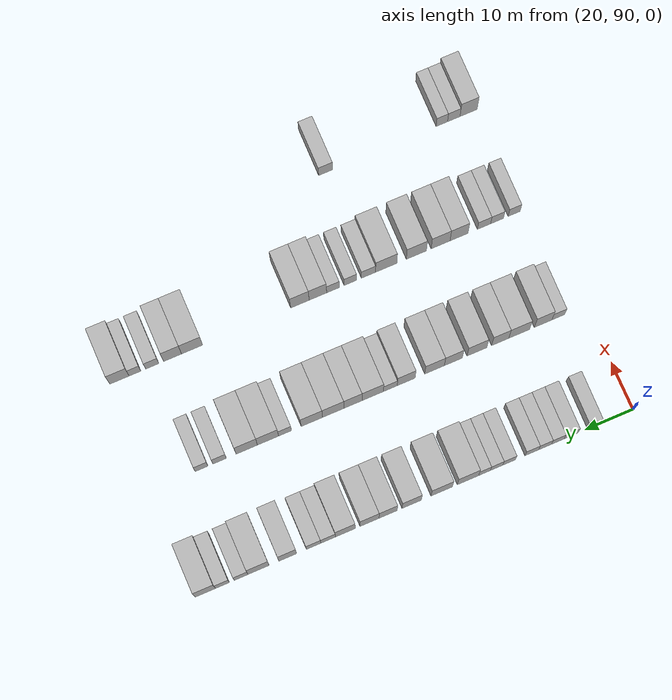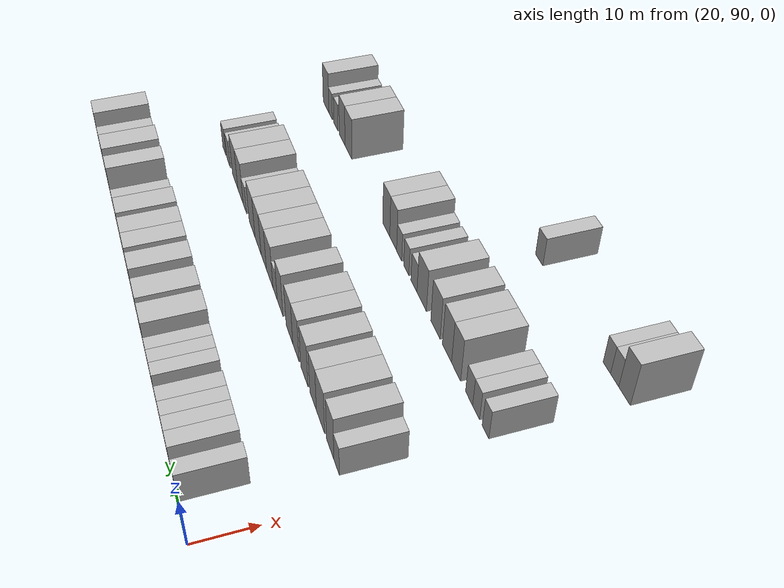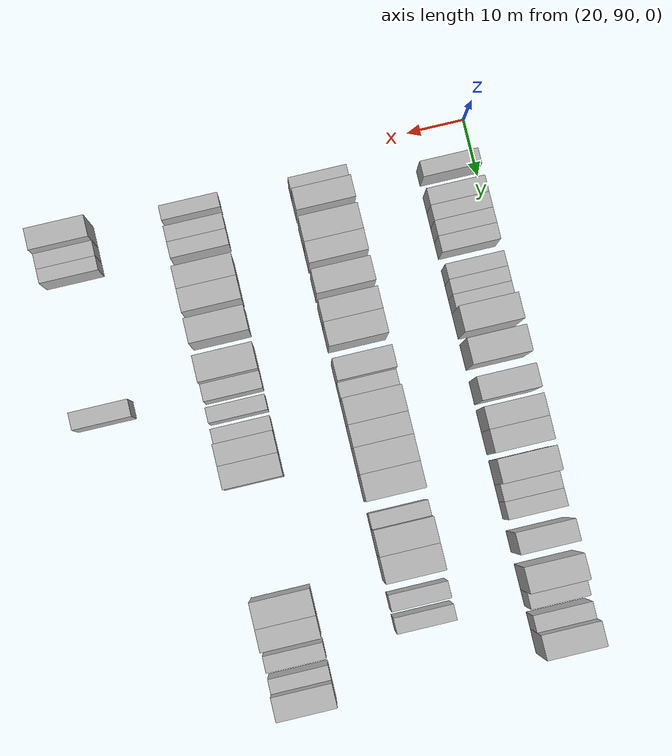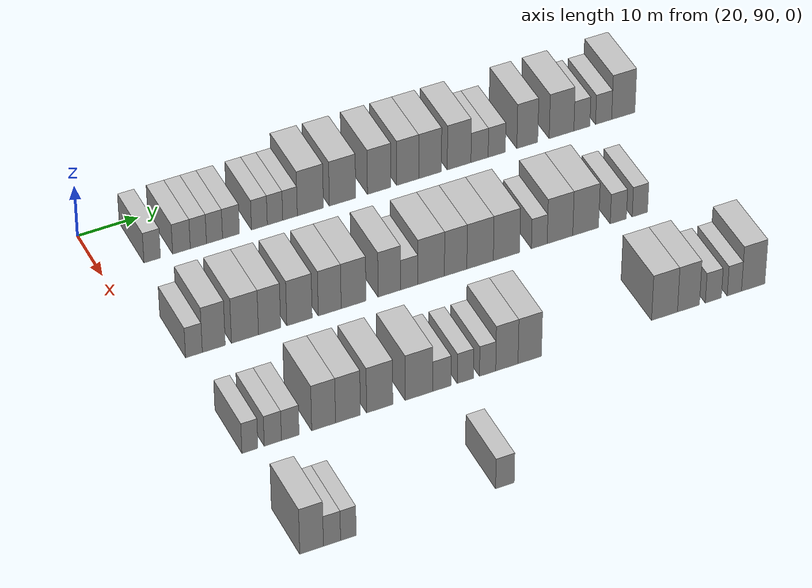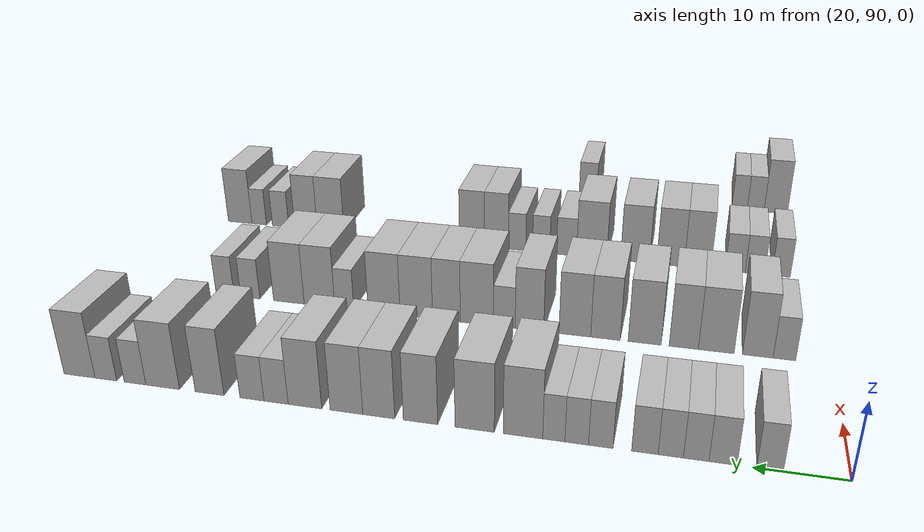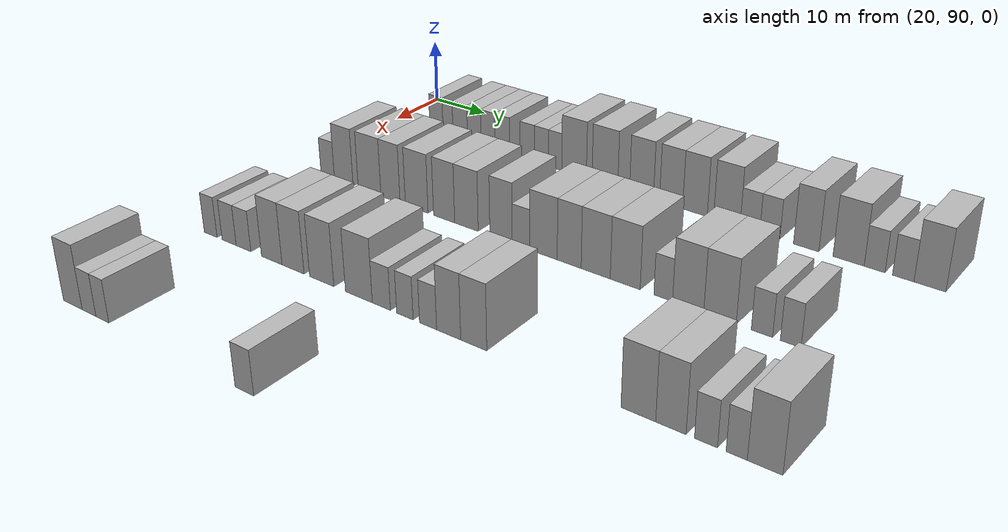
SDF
<sdf version="1.6">
 <world name="default">
  <model name="building_113">
   <static>1</static>
   <pose>25.0000 98.1934 0 0.000000 0.000000 0.000000</pose>
   <link name="link">
    <pose>0 0 3.00 0 0 0</pose>
    <collision name="collision"><geometry><box><size>10.0000 2.7188 6.0000</size></box></geometry></collision>
    <visual name="visual">
     <cast_shadows>0</cast_shadows>
     <geometry><box><size>10.0000 2.7188 6.0000</size></box></geometry>
     <material>
      <script>
       <uri>model://HANNAS_wall/materials/scripts</uri>
       <uri>model://HANNAS_wall/materials/textures</uri>
       <name>vrc/HANNAS_wall</name>
      </script>
     </material>
    </visual>
   </link>
  </model>
  <model name="building_114">
   <static>1</static>
   <pose>25.0000 103.0062 0 0.000000 0.000000 0.000000</pose>
   <link name="link">
    <pose>0 0 3.00 0 0 0</pose>
    <collision name="collision"><geometry><box><size>10.0000 2.9068 6.0000</size></box></geometry></collision>
    <visual name="visual">
     <cast_shadows>0</cast_shadows>
     <geometry><box><size>10.0000 2.9068 6.0000</size></box></geometry>
     <material>
      <script>
       <uri>model://HANNAS_wall/materials/scripts</uri>
       <uri>model://HANNAS_wall/materials/textures</uri>
       <name>vrc/HANNAS_wall</name>
      </script>
     </material>
    </visual>
   </link>
  </model>
  <model name="building_115">
   <static>1</static>
   <pose>25.0000 105.7967 0 0.000000 0.000000 0.000000</pose>
   <link name="link">
    <pose>0 0 3.00 0 0 0</pose>
    <collision name="collision"><geometry><box><size>10.0000 2.6740 6.0000</size></box></geometry></collision>
    <visual name="visual">
     <cast_shadows>0</cast_shadows>
     <geometry><box><size>10.0000 2.6740 6.0000</size></box></geometry>
     <material>
      <script>
       <uri>model://HANNAS_wall/materials/scripts</uri>
       <uri>model://HANNAS_wall/materials/textures</uri>
       <name>vrc/HANNAS_wall</name>
      </script>
     </material>
    </visual>
   </link>
  </model>
  <model name="building_116">
   <static>1</static>
   <pose>25.0000 108.4665 0 0.000000 0.000000 0.000000</pose>
   <link name="link">
    <pose>0 0 3.00 0 0 0</pose>
    <collision name="collision"><geometry><box><size>10.0000 2.6656 6.0000</size></box></geometry></collision>
    <visual name="visual">
     <cast_shadows>0</cast_shadows>
     <geometry><box><size>10.0000 2.6656 6.0000</size></box></geometry>
     <material>
      <script>
       <uri>model://HANNAS_wall/materials/scripts</uri>
       <uri>model://HANNAS_wall/materials/textures</uri>
       <name>vrc/HANNAS_wall</name>
      </script>
     </material>
    </visual>
   </link>
  </model>
  <model name="building_117">
   <static>1</static>
   <pose>25.0000 111.2076 0 0.000000 0.000000 0.000000</pose>
   <link name="link">
    <pose>0 0 3.00 0 0 0</pose>
    <collision name="collision"><geometry><box><size>10.0000 2.8167 6.0000</size></box></geometry></collision>
    <visual name="visual">
     <cast_shadows>0</cast_shadows>
     <geometry><box><size>10.0000 2.8167 6.0000</size></box></geometry>
     <material>
      <script>
       <uri>model://HANNAS_wall/materials/scripts</uri>
       <uri>model://HANNAS_wall/materials/textures</uri>
       <name>vrc/HANNAS_wall</name>
      </script>
     </material>
    </visual>
   </link>
  </model>
  <model name="building_118">
   <static>1</static>
   <pose>25.0000 115.9369 0 0.000000 0.000000 0.000000</pose>
   <link name="link">
    <pose>0 0 3.00 0 0 0</pose>
    <collision name="collision"><geometry><box><size>10.0000 2.6417 6.0000</size></box></geometry></collision>
    <visual name="visual">
     <cast_shadows>0</cast_shadows>
     <geometry><box><size>10.0000 2.6417 6.0000</size></box></geometry>
     <material>
      <script>
       <uri>model://HANNAS_wall/materials/scripts</uri>
       <uri>model://HANNAS_wall/materials/textures</uri>
       <name>vrc/HANNAS_wall</name>
      </script>
     </material>
    </visual>
   </link>
  </model>
  <model name="building_119">
   <static>1</static>
   <pose>25.0000 118.5498 0 0.000000 0.000000 0.000000</pose>
   <link name="link">
    <pose>0 0 3.00 0 0 0</pose>
    <collision name="collision"><geometry><box><size>10.0000 2.5841 6.0000</size></box></geometry></collision>
    <visual name="visual">
     <cast_shadows>0</cast_shadows>
     <geometry><box><size>10.0000 2.5841 6.0000</size></box></geometry>
     <material>
      <script>
       <uri>model://HANNAS_wall/materials/scripts</uri>
       <uri>model://HANNAS_wall/materials/textures</uri>
       <name>vrc/HANNAS_wall</name>
      </script>
     </material>
    </visual>
   </link>
  </model>
  <model name="building_120">
   <static>1</static>
   <pose>25.0000 121.0644 0 0.000000 0.000000 0.000000</pose>
   <link name="link">
    <pose>0 0 3.00 0 0 0</pose>
    <collision name="collision"><geometry><box><size>10.0000 2.4453 6.0000</size></box></geometry></collision>
    <visual name="visual">
     <cast_shadows>0</cast_shadows>
     <geometry><box><size>10.0000 2.4453 6.0000</size></box></geometry>
     <material>
      <script>
       <uri>model://HANNAS_wall/materials/scripts</uri>
       <uri>model://HANNAS_wall/materials/textures</uri>
       <name>vrc/HANNAS_wall</name>
      </script>
     </material>
    </visual>
   </link>
  </model>
  <model name="building_121">
   <static>1</static>
   <pose>25.0000 124.4871 0 0.000000 0.000000 0.000000</pose>
   <link name="link">
    <pose>0 0 4.50 0 0 0</pose>
    <collision name="collision"><geometry><box><size>10.0000 4.4001 9.0000</size></box></geometry></collision>
    <visual name="visual">
     <cast_shadows>0</cast_shadows>
     <geometry><box><size>10.0000 4.4001 9.0000</size></box></geometry>
     <material>
      <script>
       <uri>model://HANNAS_wall/materials/scripts</uri>
       <uri>model://HANNAS_wall/materials/textures</uri>
       <name>vrc/HANNAS_wall</name>
      </script>
     </material>
    </visual>
   </link>
  </model>
  <model name="building_122">
   <static>1</static>
   <pose>25.0000 129.9169 0 0.000000 0.000000 0.000000</pose>
   <link name="link">
    <pose>0 0 4.50 0 0 0</pose>
    <collision name="collision"><geometry><box><size>10.0000 4.4595 9.0000</size></box></geometry></collision>
    <visual name="visual">
     <cast_shadows>0</cast_shadows>
     <geometry><box><size>10.0000 4.4595 9.0000</size></box></geometry>
     <material>
      <script>
       <uri>model://HANNAS_wall/materials/scripts</uri>
       <uri>model://HANNAS_wall/materials/textures</uri>
       <name>vrc/HANNAS_wall</name>
      </script>
     </material>
    </visual>
   </link>
  </model>
  <model name="building_123">
   <static>1</static>
   <pose>25.0000 136.1420 0 0.000000 0.000000 0.000000</pose>
   <link name="link">
    <pose>0 0 4.50 0 0 0</pose>
    <collision name="collision"><geometry><box><size>10.0000 3.9908 9.0000</size></box></geometry></collision>
    <visual name="visual">
     <cast_shadows>0</cast_shadows>
     <geometry><box><size>10.0000 3.9908 9.0000</size></box></geometry>
     <material>
      <script>
       <uri>model://HANNAS_wall/materials/scripts</uri>
       <uri>model://HANNAS_wall/materials/textures</uri>
       <name>vrc/HANNAS_wall</name>
      </script>
     </material>
    </visual>
   </link>
  </model>
  <model name="building_124">
   <static>1</static>
   <pose>25.0000 141.0185 0 0.000000 0.000000 0.000000</pose>
   <link name="link">
    <pose>0 0 4.50 0 0 0</pose>
    <collision name="collision"><geometry><box><size>10.0000 3.7621 9.0000</size></box></geometry></collision>
    <visual name="visual">
     <cast_shadows>0</cast_shadows>
     <geometry><box><size>10.0000 3.7621 9.0000</size></box></geometry>
     <material>
      <script>
       <uri>model://HANNAS_wall/materials/scripts</uri>
       <uri>model://HANNAS_wall/materials/textures</uri>
       <name>vrc/HANNAS_wall</name>
      </script>
     </material>
    </visual>
   </link>
  </model>
  <model name="building_125">
   <static>1</static>
   <pose>25.0000 144.8563 0 0.000000 0.000000 0.000000</pose>
   <link name="link">
    <pose>0 0 4.50 0 0 0</pose>
    <collision name="collision"><geometry><box><size>10.0000 3.9134 9.0000</size></box></geometry></collision>
    <visual name="visual">
     <cast_shadows>0</cast_shadows>
     <geometry><box><size>10.0000 3.9134 9.0000</size></box></geometry>
     <material>
      <script>
       <uri>model://HANNAS_wall/materials/scripts</uri>
       <uri>model://HANNAS_wall/materials/textures</uri>
       <name>vrc/HANNAS_wall</name>
      </script>
     </material>
    </visual>
   </link>
  </model>
  <model name="building_126">
   <static>1</static>
   <pose>25.0000 149.8537 0 0.000000 0.000000 0.000000</pose>
   <link name="link">
    <pose>0 0 4.50 0 0 0</pose>
    <collision name="collision"><geometry><box><size>10.0000 4.0814 9.0000</size></box></geometry></collision>
    <visual name="visual">
     <cast_shadows>0</cast_shadows>
     <geometry><box><size>10.0000 4.0814 9.0000</size></box></geometry>
     <material>
      <script>
       <uri>model://HANNAS_wall/materials/scripts</uri>
       <uri>model://HANNAS_wall/materials/textures</uri>
       <name>vrc/HANNAS_wall</name>
      </script>
     </material>
    </visual>
   </link>
  </model>
  <model name="building_127">
   <static>1</static>
   <pose>25.0000 153.3844 0 0.000000 0.000000 0.000000</pose>
   <link name="link">
    <pose>0 0 3.00 0 0 0</pose>
    <collision name="collision"><geometry><box><size>10.0000 2.9800 6.0000</size></box></geometry></collision>
    <visual name="visual">
     <cast_shadows>0</cast_shadows>
     <geometry><box><size>10.0000 2.9800 6.0000</size></box></geometry>
     <material>
      <script>
       <uri>model://HANNAS_wall/materials/scripts</uri>
       <uri>model://HANNAS_wall/materials/textures</uri>
       <name>vrc/HANNAS_wall</name>
      </script>
     </material>
    </visual>
   </link>
  </model>
  <model name="building_128">
   <static>1</static>
   <pose>25.0000 156.3666 0 0.000000 0.000000 0.000000</pose>
   <link name="link">
    <pose>0 0 3.00 0 0 0</pose>
    <collision name="collision"><geometry><box><size>10.0000 2.9844 6.0000</size></box></geometry></collision>
    <visual name="visual">
     <cast_shadows>0</cast_shadows>
     <geometry><box><size>10.0000 2.9844 6.0000</size></box></geometry>
     <material>
      <script>
       <uri>model://HANNAS_wall/materials/scripts</uri>
       <uri>model://HANNAS_wall/materials/textures</uri>
       <name>vrc/HANNAS_wall</name>
      </script>
     </material>
    </visual>
   </link>
  </model>
  <model name="building_129">
   <static>1</static>
   <pose>25.0000 161.6820 0 0.000000 0.000000 0.000000</pose>
   <link name="link">
    <pose>0 0 4.50 0 0 0</pose>
    <collision name="collision"><geometry><box><size>10.0000 3.6465 9.0000</size></box></geometry></collision>
    <visual name="visual">
     <cast_shadows>0</cast_shadows>
     <geometry><box><size>10.0000 3.6465 9.0000</size></box></geometry>
     <material>
      <script>
       <uri>model://HANNAS_wall/materials/scripts</uri>
       <uri>model://HANNAS_wall/materials/textures</uri>
       <name>vrc/HANNAS_wall</name>
      </script>
     </material>
    </visual>
   </link>
  </model>
  <model name="building_130">
   <static>1</static>
   <pose>25.0000 167.6721 0 0.000000 0.000000 0.000000</pose>
   <link name="link">
    <pose>0 0 4.50 0 0 0</pose>
    <collision name="collision"><geometry><box><size>10.0000 4.3336 9.0000</size></box></geometry></collision>
    <visual name="visual">
     <cast_shadows>0</cast_shadows>
     <geometry><box><size>10.0000 4.3336 9.0000</size></box></geometry>
     <material>
      <script>
       <uri>model://HANNAS_wall/materials/scripts</uri>
       <uri>model://HANNAS_wall/materials/textures</uri>
       <name>vrc/HANNAS_wall</name>
      </script>
     </material>
    </visual>
   </link>
  </model>
  <model name="building_131">
   <static>1</static>
   <pose>25.0000 171.2485 0 0.000000 0.000000 0.000000</pose>
   <link name="link">
    <pose>0 0 3.00 0 0 0</pose>
    <collision name="collision"><geometry><box><size>10.0000 2.8191 6.0000</size></box></geometry></collision>
    <visual name="visual">
     <cast_shadows>0</cast_shadows>
     <geometry><box><size>10.0000 2.8191 6.0000</size></box></geometry>
     <material>
      <script>
       <uri>model://HANNAS_wall/materials/scripts</uri>
       <uri>model://HANNAS_wall/materials/textures</uri>
       <name>vrc/HANNAS_wall</name>
      </script>
     </material>
    </visual>
   </link>
  </model>
  <model name="building_132">
   <static>1</static>
   <pose>25.0000 175.0804 0 0.000000 0.000000 0.000000</pose>
   <link name="link">
    <pose>0 0 3.00 0 0 0</pose>
    <collision name="collision"><geometry><box><size>10.0000 2.8447 6.0000</size></box></geometry></collision>
    <visual name="visual">
     <cast_shadows>0</cast_shadows>
     <geometry><box><size>10.0000 2.8447 6.0000</size></box></geometry>
     <material>
      <script>
       <uri>model://HANNAS_wall/materials/scripts</uri>
       <uri>model://HANNAS_wall/materials/textures</uri>
       <name>vrc/HANNAS_wall</name>
      </script>
     </material>
    </visual>
   </link>
  </model>
  <model name="building_133">
   <static>1</static>
   <pose>25.0000 178.5672 0 0.000000 0.000000 0.000000</pose>
   <link name="link">
    <pose>0 0 4.50 0 0 0</pose>
    <collision name="collision"><geometry><box><size>10.0000 4.1291 9.0000</size></box></geometry></collision>
    <visual name="visual">
     <cast_shadows>0</cast_shadows>
     <geometry><box><size>10.0000 4.1291 9.0000</size></box></geometry>
     <material>
      <script>
       <uri>model://HANNAS_wall/materials/scripts</uri>
       <uri>model://HANNAS_wall/materials/textures</uri>
       <name>vrc/HANNAS_wall</name>
      </script>
     </material>
    </visual>
   </link>
  </model>
  <model name="building_296">
   <static>1</static>
   <pose>47.0000 95.8360 0 0.000000 0.000000 0.000000</pose>
   <link name="link">
    <pose>0 0 3.00 0 0 0</pose>
    <collision name="collision"><geometry><box><size>10.0000 2.6972 6.0000</size></box></geometry></collision>
    <visual name="visual">
     <cast_shadows>0</cast_shadows>
     <geometry><box><size>10.0000 2.6972 6.0000</size></box></geometry>
     <material>
      <script>
       <uri>model://HANNAS_wall/materials/scripts</uri>
       <uri>model://HANNAS_wall/materials/textures</uri>
       <name>vrc/HANNAS_wall</name>
      </script>
     </material>
    </visual>
   </link>
  </model>
  <model name="building_297">
   <static>1</static>
   <pose>47.0000 99.0369 0 0.000000 0.000000 0.000000</pose>
   <link name="link">
    <pose>0 0 4.50 0 0 0</pose>
    <collision name="collision"><geometry><box><size>10.0000 3.7046 9.0000</size></box></geometry></collision>
    <visual name="visual">
     <cast_shadows>0</cast_shadows>
     <geometry><box><size>10.0000 3.7046 9.0000</size></box></geometry>
     <material>
      <script>
       <uri>model://HANNAS_wall/materials/scripts</uri>
       <uri>model://HANNAS_wall/materials/textures</uri>
       <name>vrc/HANNAS_wall</name>
      </script>
     </material>
    </visual>
   </link>
  </model>
  <model name="building_298">
   <static>1</static>
   <pose>47.0000 104.0812 0 0.000000 0.000000 0.000000</pose>
   <link name="link">
    <pose>0 0 4.50 0 0 0</pose>
    <collision name="collision"><geometry><box><size>10.0000 4.3840 9.0000</size></box></geometry></collision>
    <visual name="visual">
     <cast_shadows>0</cast_shadows>
     <geometry><box><size>10.0000 4.3840 9.0000</size></box></geometry>
     <material>
      <script>
       <uri>model://HANNAS_wall/materials/scripts</uri>
       <uri>model://HANNAS_wall/materials/textures</uri>
       <name>vrc/HANNAS_wall</name>
      </script>
     </material>
    </visual>
   </link>
  </model>
  <model name="building_299">
   <static>1</static>
   <pose>47.0000 108.0763 0 0.000000 0.000000 0.000000</pose>
   <link name="link">
    <pose>0 0 4.50 0 0 0</pose>
    <collision name="collision"><geometry><box><size>10.0000 3.6062 9.0000</size></box></geometry></collision>
    <visual name="visual">
     <cast_shadows>0</cast_shadows>
     <geometry><box><size>10.0000 3.6062 9.0000</size></box></geometry>
     <material>
      <script>
       <uri>model://HANNAS_wall/materials/scripts</uri>
       <uri>model://HANNAS_wall/materials/textures</uri>
       <name>vrc/HANNAS_wall</name>
      </script>
     </material>
    </visual>
   </link>
  </model>
  <model name="building_300">
   <static>1</static>
   <pose>47.0000 112.9528 0 0.000000 0.000000 0.000000</pose>
   <link name="link">
    <pose>0 0 4.50 0 0 0</pose>
    <collision name="collision"><geometry><box><size>10.0000 4.1467 9.0000</size></box></geometry></collision>
    <visual name="visual">
     <cast_shadows>0</cast_shadows>
     <geometry><box><size>10.0000 4.1467 9.0000</size></box></geometry>
     <material>
      <script>
       <uri>model://HANNAS_wall/materials/scripts</uri>
       <uri>model://HANNAS_wall/materials/textures</uri>
       <name>vrc/HANNAS_wall</name>
      </script>
     </material>
    </visual>
   </link>
  </model>
  <model name="building_301">
   <static>1</static>
   <pose>47.0000 117.9065 0 0.000000 0.000000 0.000000</pose>
   <link name="link">
    <pose>0 0 4.50 0 0 0</pose>
    <collision name="collision"><geometry><box><size>10.0000 3.7607 9.0000</size></box></geometry></collision>
    <visual name="visual">
     <cast_shadows>0</cast_shadows>
     <geometry><box><size>10.0000 3.7607 9.0000</size></box></geometry>
     <material>
      <script>
       <uri>model://HANNAS_wall/materials/scripts</uri>
       <uri>model://HANNAS_wall/materials/textures</uri>
       <name>vrc/HANNAS_wall</name>
      </script>
     </material>
    </visual>
   </link>
  </model>
  <model name="building_302">
   <static>1</static>
   <pose>47.0000 121.8339 0 0.000000 0.000000 0.000000</pose>
   <link name="link">
    <pose>0 0 4.50 0 0 0</pose>
    <collision name="collision"><geometry><box><size>10.0000 4.0941 9.0000</size></box></geometry></collision>
    <visual name="visual">
     <cast_shadows>0</cast_shadows>
     <geometry><box><size>10.0000 4.0941 9.0000</size></box></geometry>
     <material>
      <script>
       <uri>model://HANNAS_wall/materials/scripts</uri>
       <uri>model://HANNAS_wall/materials/textures</uri>
       <name>vrc/HANNAS_wall</name>
      </script>
     </material>
    </visual>
   </link>
  </model>
  <model name="building_303">
   <static>1</static>
   <pose>47.0000 127.7481 0 0.000000 0.000000 0.000000</pose>
   <link name="link">
    <pose>0 0 4.50 0 0 0</pose>
    <collision name="collision"><geometry><box><size>10.0000 3.7342 9.0000</size></box></geometry></collision>
    <visual name="visual">
     <cast_shadows>0</cast_shadows>
     <geometry><box><size>10.0000 3.7342 9.0000</size></box></geometry>
     <material>
      <script>
       <uri>model://HANNAS_wall/materials/scripts</uri>
       <uri>model://HANNAS_wall/materials/textures</uri>
       <name>vrc/HANNAS_wall</name>
      </script>
     </material>
    </visual>
   </link>
  </model>
  <model name="building_304">
   <static>1</static>
   <pose>47.0000 131.0522 0 0.000000 0.000000 0.000000</pose>
   <link name="link">
    <pose>0 0 3.00 0 0 0</pose>
    <collision name="collision"><geometry><box><size>10.0000 2.8739 6.0000</size></box></geometry></collision>
    <visual name="visual">
     <cast_shadows>0</cast_shadows>
     <geometry><box><size>10.0000 2.8739 6.0000</size></box></geometry>
     <material>
      <script>
       <uri>model://HANNAS_wall/materials/scripts</uri>
       <uri>model://HANNAS_wall/materials/textures</uri>
       <name>vrc/HANNAS_wall</name>
      </script>
     </material>
    </visual>
   </link>
  </model>
  <model name="building_305">
   <static>1</static>
   <pose>47.0000 134.7107 0 0.000000 0.000000 0.000000</pose>
   <link name="link">
    <pose>0 0 4.50 0 0 0</pose>
    <collision name="collision"><geometry><box><size>10.0000 4.4432 9.0000</size></box></geometry></collision>
    <visual name="visual">
     <cast_shadows>0</cast_shadows>
     <geometry><box><size>10.0000 4.4432 9.0000</size></box></geometry>
     <material>
      <script>
       <uri>model://HANNAS_wall/materials/scripts</uri>
       <uri>model://HANNAS_wall/materials/textures</uri>
       <name>vrc/HANNAS_wall</name>
      </script>
     </material>
    </visual>
   </link>
  </model>
  <model name="building_306">
   <static>1</static>
   <pose>47.0000 138.8138 0 0.000000 0.000000 0.000000</pose>
   <link name="link">
    <pose>0 0 4.50 0 0 0</pose>
    <collision name="collision"><geometry><box><size>10.0000 3.7629 9.0000</size></box></geometry></collision>
    <visual name="visual">
     <cast_shadows>0</cast_shadows>
     <geometry><box><size>10.0000 3.7629 9.0000</size></box></geometry>
     <material>
      <script>
       <uri>model://HANNAS_wall/materials/scripts</uri>
       <uri>model://HANNAS_wall/materials/textures</uri>
       <name>vrc/HANNAS_wall</name>
      </script>
     </material>
    </visual>
   </link>
  </model>
  <model name="building_307">
   <static>1</static>
   <pose>47.0000 142.9239 0 0.000000 0.000000 0.000000</pose>
   <link name="link">
    <pose>0 0 4.50 0 0 0</pose>
    <collision name="collision"><geometry><box><size>10.0000 4.4574 9.0000</size></box></geometry></collision>
    <visual name="visual">
     <cast_shadows>0</cast_shadows>
     <geometry><box><size>10.0000 4.4574 9.0000</size></box></geometry>
     <material>
      <script>
       <uri>model://HANNAS_wall/materials/scripts</uri>
       <uri>model://HANNAS_wall/materials/textures</uri>
       <name>vrc/HANNAS_wall</name>
      </script>
     </material>
    </visual>
   </link>
  </model>
  <model name="building_308">
   <static>1</static>
   <pose>47.0000 147.3771 0 0.000000 0.000000 0.000000</pose>
   <link name="link">
    <pose>0 0 4.50 0 0 0</pose>
    <collision name="collision"><geometry><box><size>10.0000 4.4489 9.0000</size></box></geometry></collision>
    <visual name="visual">
     <cast_shadows>0</cast_shadows>
     <geometry><box><size>10.0000 4.4489 9.0000</size></box></geometry>
     <material>
      <script>
       <uri>model://HANNAS_wall/materials/scripts</uri>
       <uri>model://HANNAS_wall/materials/textures</uri>
       <name>vrc/HANNAS_wall</name>
      </script>
     </material>
    </visual>
   </link>
  </model>
  <model name="building_309">
   <static>1</static>
   <pose>47.0000 152.9377 0 0.000000 0.000000 0.000000</pose>
   <link name="link">
    <pose>0 0 3.00 0 0 0</pose>
    <collision name="collision"><geometry><box><size>10.0000 2.6724 6.0000</size></box></geometry></collision>
    <visual name="visual">
     <cast_shadows>0</cast_shadows>
     <geometry><box><size>10.0000 2.6724 6.0000</size></box></geometry>
     <material>
      <script>
       <uri>model://HANNAS_wall/materials/scripts</uri>
       <uri>model://HANNAS_wall/materials/textures</uri>
       <name>vrc/HANNAS_wall</name>
      </script>
     </material>
    </visual>
   </link>
  </model>
  <model name="building_310">
   <static>1</static>
   <pose>47.0000 156.4599 0 0.000000 0.000000 0.000000</pose>
   <link name="link">
    <pose>0 0 4.50 0 0 0</pose>
    <collision name="collision"><geometry><box><size>10.0000 4.3719 9.0000</size></box></geometry></collision>
    <visual name="visual">
     <cast_shadows>0</cast_shadows>
     <geometry><box><size>10.0000 4.3719 9.0000</size></box></geometry>
     <material>
      <script>
       <uri>model://HANNAS_wall/materials/scripts</uri>
       <uri>model://HANNAS_wall/materials/textures</uri>
       <name>vrc/HANNAS_wall</name>
      </script>
     </material>
    </visual>
   </link>
  </model>
  <model name="building_311">
   <static>1</static>
   <pose>47.0000 160.8586 0 0.000000 0.000000 0.000000</pose>
   <link name="link">
    <pose>0 0 4.50 0 0 0</pose>
    <collision name="collision"><geometry><box><size>10.0000 4.4255 9.0000</size></box></geometry></collision>
    <visual name="visual">
     <cast_shadows>0</cast_shadows>
     <geometry><box><size>10.0000 4.4255 9.0000</size></box></geometry>
     <material>
      <script>
       <uri>model://HANNAS_wall/materials/scripts</uri>
       <uri>model://HANNAS_wall/materials/textures</uri>
       <name>vrc/HANNAS_wall</name>
      </script>
     </material>
    </visual>
   </link>
  </model>
  <model name="building_312">
   <static>1</static>
   <pose>47.0000 166.4663 0 0.000000 0.000000 0.000000</pose>
   <link name="link">
    <pose>0 0 3.00 0 0 0</pose>
    <collision name="collision"><geometry><box><size>10.0000 2.7898 6.0000</size></box></geometry></collision>
    <visual name="visual">
     <cast_shadows>0</cast_shadows>
     <geometry><box><size>10.0000 2.7898 6.0000</size></box></geometry>
     <material>
      <script>
       <uri>model://HANNAS_wall/materials/scripts</uri>
       <uri>model://HANNAS_wall/materials/textures</uri>
       <name>vrc/HANNAS_wall</name>
      </script>
     </material>
    </visual>
   </link>
  </model>
  <model name="building_313">
   <static>1</static>
   <pose>47.0000 170.1866 0 0.000000 0.000000 0.000000</pose>
   <link name="link">
    <pose>0 0 3.00 0 0 0</pose>
    <collision name="collision"><geometry><box><size>10.0000 2.6507 6.0000</size></box></geometry></collision>
    <visual name="visual">
     <cast_shadows>0</cast_shadows>
     <geometry><box><size>10.0000 2.6507 6.0000</size></box></geometry>
     <material>
      <script>
       <uri>model://HANNAS_wall/materials/scripts</uri>
       <uri>model://HANNAS_wall/materials/textures</uri>
       <name>vrc/HANNAS_wall</name>
      </script>
     </material>
    </visual>
   </link>
  </model>
  <model name="building_481">
   <static>1</static>
   <pose>69.0000 95.3985 0 0.000000 0.000000 0.000000</pose>
   <link name="link">
    <pose>0 0 3.00 0 0 0</pose>
    <collision name="collision"><geometry><box><size>10.0000 2.5246 6.0000</size></box></geometry></collision>
    <visual name="visual">
     <cast_shadows>0</cast_shadows>
     <geometry><box><size>10.0000 2.5246 6.0000</size></box></geometry>
     <material>
      <script>
       <uri>model://HANNAS_wall/materials/scripts</uri>
       <uri>model://HANNAS_wall/materials/textures</uri>
       <name>vrc/HANNAS_wall</name>
      </script>
     </material>
    </visual>
   </link>
  </model>
  <model name="building_482">
   <static>1</static>
   <pose>69.0000 99.0196 0 0.000000 0.000000 0.000000</pose>
   <link name="link">
    <pose>0 0 3.00 0 0 0</pose>
    <collision name="collision"><geometry><box><size>10.0000 2.7177 6.0000</size></box></geometry></collision>
    <visual name="visual">
     <cast_shadows>0</cast_shadows>
     <geometry><box><size>10.0000 2.7177 6.0000</size></box></geometry>
     <material>
      <script>
       <uri>model://HANNAS_wall/materials/scripts</uri>
       <uri>model://HANNAS_wall/materials/textures</uri>
       <name>vrc/HANNAS_wall</name>
      </script>
     </material>
    </visual>
   </link>
  </model>
  <model name="building_483">
   <static>1</static>
   <pose>69.0000 101.7805 0 0.000000 0.000000 0.000000</pose>
   <link name="link">
    <pose>0 0 3.00 0 0 0</pose>
    <collision name="collision"><geometry><box><size>10.0000 2.8041 6.0000</size></box></geometry></collision>
    <visual name="visual">
     <cast_shadows>0</cast_shadows>
     <geometry><box><size>10.0000 2.8041 6.0000</size></box></geometry>
     <material>
      <script>
       <uri>model://HANNAS_wall/materials/scripts</uri>
       <uri>model://HANNAS_wall/materials/textures</uri>
       <name>vrc/HANNAS_wall</name>
      </script>
     </material>
    </visual>
   </link>
  </model>
  <model name="building_484">
   <static>1</static>
   <pose>69.0000 107.0834 0 0.000000 0.000000 0.000000</pose>
   <link name="link">
    <pose>0 0 4.50 0 0 0</pose>
    <collision name="collision"><geometry><box><size>10.0000 3.8019 9.0000</size></box></geometry></collision>
    <visual name="visual">
     <cast_shadows>0</cast_shadows>
     <geometry><box><size>10.0000 3.8019 9.0000</size></box></geometry>
     <material>
      <script>
       <uri>model://HANNAS_wall/materials/scripts</uri>
       <uri>model://HANNAS_wall/materials/textures</uri>
       <name>vrc/HANNAS_wall</name>
      </script>
     </material>
    </visual>
   </link>
  </model>
  <model name="building_485">
   <static>1</static>
   <pose>69.0000 110.9697 0 0.000000 0.000000 0.000000</pose>
   <link name="link">
    <pose>0 0 4.50 0 0 0</pose>
    <collision name="collision"><geometry><box><size>10.0000 3.9706 9.0000</size></box></geometry></collision>
    <visual name="visual">
     <cast_shadows>0</cast_shadows>
     <geometry><box><size>10.0000 3.9706 9.0000</size></box></geometry>
     <material>
      <script>
       <uri>model://HANNAS_wall/materials/scripts</uri>
       <uri>model://HANNAS_wall/materials/textures</uri>
       <name>vrc/HANNAS_wall</name>
      </script>
     </material>
    </visual>
   </link>
  </model>
  <model name="building_486">
   <static>1</static>
   <pose>69.0000 116.0670 0 0.000000 0.000000 0.000000</pose>
   <link name="link">
    <pose>0 0 4.50 0 0 0</pose>
    <collision name="collision"><geometry><box><size>10.0000 4.2240 9.0000</size></box></geometry></collision>
    <visual name="visual">
     <cast_shadows>0</cast_shadows>
     <geometry><box><size>10.0000 4.2240 9.0000</size></box></geometry>
     <material>
      <script>
       <uri>model://HANNAS_wall/materials/scripts</uri>
       <uri>model://HANNAS_wall/materials/textures</uri>
       <name>vrc/HANNAS_wall</name>
      </script>
     </material>
    </visual>
   </link>
  </model>
  <model name="building_487">
   <static>1</static>
   <pose>69.0000 122.4217 0 0.000000 0.000000 0.000000</pose>
   <link name="link">
    <pose>0 0 4.50 0 0 0</pose>
    <collision name="collision"><geometry><box><size>10.0000 4.4855 9.0000</size></box></geometry></collision>
    <visual name="visual">
     <cast_shadows>0</cast_shadows>
     <geometry><box><size>10.0000 4.4855 9.0000</size></box></geometry>
     <material>
      <script>
       <uri>model://HANNAS_wall/materials/scripts</uri>
       <uri>model://HANNAS_wall/materials/textures</uri>
       <name>vrc/HANNAS_wall</name>
      </script>
     </material>
    </visual>
   </link>
  </model>
  <model name="building_488">
   <static>1</static>
   <pose>69.0000 126.1532 0 0.000000 0.000000 0.000000</pose>
   <link name="link">
    <pose>0 0 3.00 0 0 0</pose>
    <collision name="collision"><geometry><box><size>10.0000 2.9774 6.0000</size></box></geometry></collision>
    <visual name="visual">
     <cast_shadows>0</cast_shadows>
     <geometry><box><size>10.0000 2.9774 6.0000</size></box></geometry>
     <material>
      <script>
       <uri>model://HANNAS_wall/materials/scripts</uri>
       <uri>model://HANNAS_wall/materials/textures</uri>
       <name>vrc/HANNAS_wall</name>
      </script>
     </material>
    </visual>
   </link>
  </model>
  <model name="building_489">
   <static>1</static>
   <pose>69.0000 129.9533 0 0.000000 0.000000 0.000000</pose>
   <link name="link">
    <pose>0 0 3.00 0 0 0</pose>
    <collision name="collision"><geometry><box><size>10.0000 2.6228 6.0000</size></box></geometry></collision>
    <visual name="visual">
     <cast_shadows>0</cast_shadows>
     <geometry><box><size>10.0000 2.6228 6.0000</size></box></geometry>
     <material>
      <script>
       <uri>model://HANNAS_wall/materials/scripts</uri>
       <uri>model://HANNAS_wall/materials/textures</uri>
       <name>vrc/HANNAS_wall</name>
      </script>
     </material>
    </visual>
   </link>
  </model>
  <model name="building_490">
   <static>1</static>
   <pose>69.0000 133.5945 0 0.000000 0.000000 0.000000</pose>
   <link name="link">
    <pose>0 0 3.00 0 0 0</pose>
    <collision name="collision"><geometry><box><size>10.0000 2.6596 6.0000</size></box></geometry></collision>
    <visual name="visual">
     <cast_shadows>0</cast_shadows>
     <geometry><box><size>10.0000 2.6596 6.0000</size></box></geometry>
     <material>
      <script>
       <uri>model://HANNAS_wall/materials/scripts</uri>
       <uri>model://HANNAS_wall/materials/textures</uri>
       <name>vrc/HANNAS_wall</name>
      </script>
     </material>
    </visual>
   </link>
  </model>
  <model name="building_491">
   <static>1</static>
   <pose>69.0000 136.7557 0 0.000000 0.000000 0.000000</pose>
   <link name="link">
    <pose>0 0 4.50 0 0 0</pose>
    <collision name="collision"><geometry><box><size>10.0000 3.6628 9.0000</size></box></geometry></collision>
    <visual name="visual">
     <cast_shadows>0</cast_shadows>
     <geometry><box><size>10.0000 3.6628 9.0000</size></box></geometry>
     <material>
      <script>
       <uri>model://HANNAS_wall/materials/scripts</uri>
       <uri>model://HANNAS_wall/materials/textures</uri>
       <name>vrc/HANNAS_wall</name>
      </script>
     </material>
    </visual>
   </link>
  </model>
  <model name="building_492">
   <static>1</static>
   <pose>69.0000 140.5213 0 0.000000 0.000000 0.000000</pose>
   <link name="link">
    <pose>0 0 4.50 0 0 0</pose>
    <collision name="collision"><geometry><box><size>10.0000 3.8684 9.0000</size></box></geometry></collision>
    <visual name="visual">
     <cast_shadows>0</cast_shadows>
     <geometry><box><size>10.0000 3.8684 9.0000</size></box></geometry>
     <material>
      <script>
       <uri>model://HANNAS_wall/materials/scripts</uri>
       <uri>model://HANNAS_wall/materials/textures</uri>
       <name>vrc/HANNAS_wall</name>
      </script>
     </material>
    </visual>
   </link>
  </model>
  <model name="building_493">
   <static>1</static>
   <pose>69.0000 163.0178 0 0.000000 0.000000 0.000000</pose>
   <link name="link">
    <pose>0 0 4.50 0 0 0</pose>
    <collision name="collision"><geometry><box><size>10.0000 4.3749 9.0000</size></box></geometry></collision>
    <visual name="visual">
     <cast_shadows>0</cast_shadows>
     <geometry><box><size>10.0000 4.3749 9.0000</size></box></geometry>
     <material>
      <script>
       <uri>model://HANNAS_wall/materials/scripts</uri>
       <uri>model://HANNAS_wall/materials/textures</uri>
       <name>vrc/HANNAS_wall</name>
      </script>
     </material>
    </visual>
   </link>
  </model>
  <model name="building_494">
   <static>1</static>
   <pose>69.0000 167.0645 0 0.000000 0.000000 0.000000</pose>
   <link name="link">
    <pose>0 0 4.50 0 0 0</pose>
    <collision name="collision"><geometry><box><size>10.0000 3.7185 9.0000</size></box></geometry></collision>
    <visual name="visual">
     <cast_shadows>0</cast_shadows>
     <geometry><box><size>10.0000 3.7185 9.0000</size></box></geometry>
     <material>
      <script>
       <uri>model://HANNAS_wall/materials/scripts</uri>
       <uri>model://HANNAS_wall/materials/textures</uri>
       <name>vrc/HANNAS_wall</name>
      </script>
     </material>
    </visual>
   </link>
  </model>
  <model name="building_495">
   <static>1</static>
   <pose>69.0000 171.2881 0 0.000000 0.000000 0.000000</pose>
   <link name="link">
    <pose>0 0 3.00 0 0 0</pose>
    <collision name="collision"><geometry><box><size>10.0000 2.7287 6.0000</size></box></geometry></collision>
    <visual name="visual">
     <cast_shadows>0</cast_shadows>
     <geometry><box><size>10.0000 2.7287 6.0000</size></box></geometry>
     <material>
      <script>
       <uri>model://HANNAS_wall/materials/scripts</uri>
       <uri>model://HANNAS_wall/materials/textures</uri>
       <name>vrc/HANNAS_wall</name>
      </script>
     </material>
    </visual>
   </link>
  </model>
  <model name="building_496">
   <static>1</static>
   <pose>69.0000 174.8691 0 0.000000 0.000000 0.000000</pose>
   <link name="link">
    <pose>0 0 3.00 0 0 0</pose>
    <collision name="collision"><geometry><box><size>10.0000 2.4333 6.0000</size></box></geometry></collision>
    <visual name="visual">
     <cast_shadows>0</cast_shadows>
     <geometry><box><size>10.0000 2.4333 6.0000</size></box></geometry>
     <material>
      <script>
       <uri>model://HANNAS_wall/materials/scripts</uri>
       <uri>model://HANNAS_wall/materials/textures</uri>
       <name>vrc/HANNAS_wall</name>
      </script>
     </material>
    </visual>
   </link>
  </model>
  <model name="building_497">
   <static>1</static>
   <pose>69.0000 178.0862 0 0.000000 0.000000 0.000000</pose>
   <link name="link">
    <pose>0 0 4.50 0 0 0</pose>
    <collision name="collision"><geometry><box><size>10.0000 4.0010 9.0000</size></box></geometry></collision>
    <visual name="visual">
     <cast_shadows>0</cast_shadows>
     <geometry><box><size>10.0000 4.0010 9.0000</size></box></geometry>
     <material>
      <script>
       <uri>model://HANNAS_wall/materials/scripts</uri>
       <uri>model://HANNAS_wall/materials/textures</uri>
       <name>vrc/HANNAS_wall</name>
      </script>
     </material>
    </visual>
   </link>
  </model>
  <model name="building_668">
   <static>1</static>
   <pose>91.0000 95.4032 0 0.000000 0.000000 0.000000</pose>
   <link name="link">
    <pose>0 0 4.50 0 0 0</pose>
    <collision name="collision"><geometry><box><size>10.0000 3.6603 9.0000</size></box></geometry></collision>
    <visual name="visual">
     <cast_shadows>0</cast_shadows>
     <geometry><box><size>10.0000 3.6603 9.0000</size></box></geometry>
     <material>
      <script>
       <uri>model://HANNAS_wall/materials/scripts</uri>
       <uri>model://HANNAS_wall/materials/textures</uri>
       <name>vrc/HANNAS_wall</name>
      </script>
     </material>
    </visual>
   </link>
  </model>
  <model name="building_669">
   <static>1</static>
   <pose>91.0000 98.5600 0 0.000000 0.000000 0.000000</pose>
   <link name="link">
    <pose>0 0 3.00 0 0 0</pose>
    <collision name="collision"><geometry><box><size>10.0000 2.6532 6.0000</size></box></geometry></collision>
    <visual name="visual">
     <cast_shadows>0</cast_shadows>
     <geometry><box><size>10.0000 2.6532 6.0000</size></box></geometry>
     <material>
      <script>
       <uri>model://HANNAS_wall/materials/scripts</uri>
       <uri>model://HANNAS_wall/materials/textures</uri>
       <name>vrc/HANNAS_wall</name>
      </script>
     </material>
    </visual>
   </link>
  </model>
  <model name="building_670">
   <static>1</static>
   <pose>91.0000 101.1007 0 0.000000 0.000000 0.000000</pose>
   <link name="link">
    <pose>0 0 3.00 0 0 0</pose>
    <collision name="collision"><geometry><box><size>10.0000 2.4282 6.0000</size></box></geometry></collision>
    <visual name="visual">
     <cast_shadows>0</cast_shadows>
     <geometry><box><size>10.0000 2.4282 6.0000</size></box></geometry>
     <material>
      <script>
       <uri>model://HANNAS_wall/materials/scripts</uri>
       <uri>model://HANNAS_wall/materials/textures</uri>
       <name>vrc/HANNAS_wall</name>
      </script>
     </material>
    </visual>
   </link>
  </model>
  <model name="building_671">
   <static>1</static>
   <pose>91.0000 125.7644 0 0.000000 0.000000 0.000000</pose>
   <link name="link">
    <pose>0 0 3.00 0 0 0</pose>
    <collision name="collision"><geometry><box><size>10.0000 2.9665 6.0000</size></box></geometry></collision>
    <visual name="visual">
     <cast_shadows>0</cast_shadows>
     <geometry><box><size>10.0000 2.9665 6.0000</size></box></geometry>
     <material>
      <script>
       <uri>model://HANNAS_wall/materials/scripts</uri>
       <uri>model://HANNAS_wall/materials/textures</uri>
       <name>vrc/HANNAS_wall</name>
      </script>
     </material>
    </visual>
   </link>
  </model>
 </world>
</sdf>
